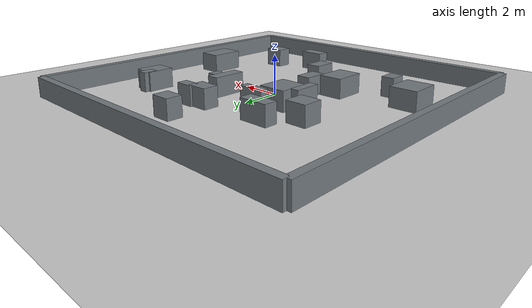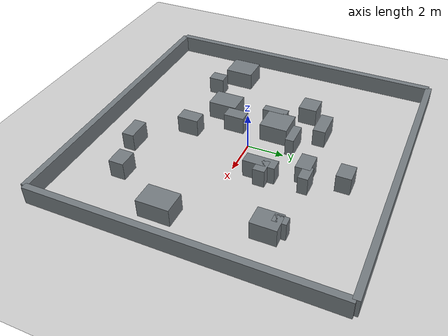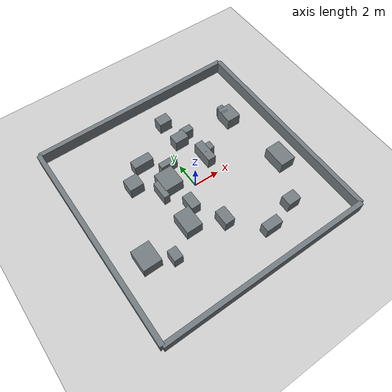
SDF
<?xml version="1.0" ?>
<sdf version="1.10">
  <world name="random_blocks_4">
    <physics name="1ms" type="ignored">
      <max_step_size>0.001</max_step_size>
      <real_time_factor>1.0</real_time_factor>
    </physics>
    <plugin filename="gz-sim-physics-system" name="gz::sim::systems::Physics"/>
    <plugin filename="gz-sim-user-commands-system" name="gz::sim::systems::UserCommands"/>
    <plugin filename="gz-sim-scene-broadcaster-system" name="gz::sim::systems::SceneBroadcaster"/>
    <light name="sun" type="directional">
      <pose>0 0 10 0 0 0</pose>
      <diffuse>0.8 0.8 0.8 1</diffuse>
      <specular>0.2 0.2 0.2 1</specular>
      <direction>-0.5 0.1 -0.9</direction>
    </light>
    <model name="ground_plane">
      <static>true</static>
      <link name="link">
        <collision name="collision"><geometry><plane><normal>0 0 1</normal><size>30 30</size></plane></geometry></collision>
        <visual name="visual"><geometry><plane><normal>0 0 1</normal><size>30 30</size></plane></geometry></visual>
      </link>
    </model>

    <model name="boundary_north">
      <static>true</static>
      <pose>0.000 8.000 0.500 0 0 0</pose>
      <link name="link">
        <collision name="collision">
          <geometry><box><size>16.000 0.350 1.000</size></box></geometry>
        </collision>
        <visual name="visual">
          <geometry><box><size>16.000 0.350 1.000</size></box></geometry>
          <material><ambient>0.45 0.48 0.50 1</ambient><diffuse>0.45 0.48 0.50 1</diffuse></material>
        </visual>
      </link>
    </model>
    <model name="boundary_south">
      <static>true</static>
      <pose>0.000 -8.000 0.500 0 0 0</pose>
      <link name="link">
        <collision name="collision">
          <geometry><box><size>16.000 0.350 1.000</size></box></geometry>
        </collision>
        <visual name="visual">
          <geometry><box><size>16.000 0.350 1.000</size></box></geometry>
          <material><ambient>0.45 0.48 0.50 1</ambient><diffuse>0.45 0.48 0.50 1</diffuse></material>
        </visual>
      </link>
    </model>
    <model name="boundary_west">
      <static>true</static>
      <pose>-8.000 0.000 0.500 0 0 0</pose>
      <link name="link">
        <collision name="collision">
          <geometry><box><size>0.350 16.000 1.000</size></box></geometry>
        </collision>
        <visual name="visual">
          <geometry><box><size>0.350 16.000 1.000</size></box></geometry>
          <material><ambient>0.45 0.48 0.50 1</ambient><diffuse>0.45 0.48 0.50 1</diffuse></material>
        </visual>
      </link>
    </model>
    <model name="boundary_east">
      <static>true</static>
      <pose>8.000 0.000 0.500 0 0 0</pose>
      <link name="link">
        <collision name="collision">
          <geometry><box><size>0.350 16.000 1.000</size></box></geometry>
        </collision>
        <visual name="visual">
          <geometry><box><size>0.350 16.000 1.000</size></box></geometry>
          <material><ambient>0.45 0.48 0.50 1</ambient><diffuse>0.45 0.48 0.50 1</diffuse></material>
        </visual>
      </link>
    </model>
    <model name="block_4_0">
      <static>true</static>
      <pose>2.231 1.689 0.500 0 0 0</pose>
      <link name="link">
        <collision name="collision">
          <geometry><box><size>0.836 0.617 1.000</size></box></geometry>
        </collision>
        <visual name="visual">
          <geometry><box><size>0.836 0.617 1.000</size></box></geometry>
          <material><ambient>0.45 0.48 0.50 1</ambient><diffuse>0.45 0.48 0.50 1</diffuse></material>
        </visual>
      </link>
    </model>
    <model name="block_4_1">
      <static>true</static>
      <pose>-1.520 1.082 0.500 0 0 0</pose>
      <link name="link">
        <collision name="collision">
          <geometry><box><size>1.410 1.521 1.000</size></box></geometry>
        </collision>
        <visual name="visual">
          <geometry><box><size>1.410 1.521 1.000</size></box></geometry>
          <material><ambient>0.45 0.48 0.50 1</ambient><diffuse>0.45 0.48 0.50 1</diffuse></material>
        </visual>
      </link>
    </model>
    <model name="block_4_2">
      <static>true</static>
      <pose>1.002 5.620 0.500 0 0 0</pose>
      <link name="link">
        <collision name="collision">
          <geometry><box><size>0.990 0.787 1.000</size></box></geometry>
        </collision>
        <visual name="visual">
          <geometry><box><size>0.990 0.787 1.000</size></box></geometry>
          <material><ambient>0.45 0.48 0.50 1</ambient><diffuse>0.45 0.48 0.50 1</diffuse></material>
        </visual>
      </link>
    </model>
    <model name="block_4_3">
      <static>true</static>
      <pose>1.924 1.516 0.500 0 0 0</pose>
      <link name="link">
        <collision name="collision">
          <geometry><box><size>0.636 1.698 1.000</size></box></geometry>
        </collision>
        <visual name="visual">
          <geometry><box><size>0.636 1.698 1.000</size></box></geometry>
          <material><ambient>0.45 0.48 0.50 1</ambient><diffuse>0.45 0.48 0.50 1</diffuse></material>
        </visual>
      </link>
    </model>
    <model name="block_4_4">
      <static>true</static>
      <pose>2.112 -5.679 0.500 0 0 0</pose>
      <link name="link">
        <collision name="collision">
          <geometry><box><size>1.280 0.671 1.000</size></box></geometry>
        </collision>
        <visual name="visual">
          <geometry><box><size>1.280 0.671 1.000</size></box></geometry>
          <material><ambient>0.45 0.48 0.50 1</ambient><diffuse>0.45 0.48 0.50 1</diffuse></material>
        </visual>
      </link>
    </model>
    <model name="block_4_5">
      <static>true</static>
      <pose>-2.237 -2.294 0.500 0 0 0</pose>
      <link name="link">
        <collision name="collision">
          <geometry><box><size>1.205 1.597 1.000</size></box></geometry>
        </collision>
        <visual name="visual">
          <geometry><box><size>1.205 1.597 1.000</size></box></geometry>
          <material><ambient>0.45 0.48 0.50 1</ambient><diffuse>0.45 0.48 0.50 1</diffuse></material>
        </visual>
      </link>
    </model>
    <model name="block_4_6">
      <static>true</static>
      <pose>5.422 3.286 0.500 0 0 0</pose>
      <link name="link">
        <collision name="collision">
          <geometry><box><size>1.066 1.340 1.000</size></box></geometry>
        </collision>
        <visual name="visual">
          <geometry><box><size>1.066 1.340 1.000</size></box></geometry>
          <material><ambient>0.45 0.48 0.50 1</ambient><diffuse>0.45 0.48 0.50 1</diffuse></material>
        </visual>
      </link>
    </model>
    <model name="block_4_7">
      <static>true</static>
      <pose>1.877 3.849 0.500 0 0 0</pose>
      <link name="link">
        <collision name="collision">
          <geometry><box><size>0.921 0.525 1.000</size></box></geometry>
        </collision>
        <visual name="visual">
          <geometry><box><size>0.921 0.525 1.000</size></box></geometry>
          <material><ambient>0.45 0.48 0.50 1</ambient><diffuse>0.45 0.48 0.50 1</diffuse></material>
        </visual>
      </link>
    </model>
    <model name="block_4_8">
      <static>true</static>
      <pose>4.406 -4.968 0.500 0 0 0</pose>
      <link name="link">
        <collision name="collision">
          <geometry><box><size>1.002 0.820 1.000</size></box></geometry>
        </collision>
        <visual name="visual">
          <geometry><box><size>1.002 0.820 1.000</size></box></geometry>
          <material><ambient>0.45 0.48 0.50 1</ambient><diffuse>0.45 0.48 0.50 1</diffuse></material>
        </visual>
      </link>
    </model>
    <model name="block_4_9">
      <static>true</static>
      <pose>-5.838 -2.854 0.500 0 0 0</pose>
      <link name="link">
        <collision name="collision">
          <geometry><box><size>1.371 1.587 1.000</size></box></geometry>
        </collision>
        <visual name="visual">
          <geometry><box><size>1.371 1.587 1.000</size></box></geometry>
          <material><ambient>0.45 0.48 0.50 1</ambient><diffuse>0.45 0.48 0.50 1</diffuse></material>
        </visual>
      </link>
    </model>
    <model name="block_4_10">
      <static>true</static>
      <pose>-3.683 2.211 0.500 0 0 0</pose>
      <link name="link">
        <collision name="collision">
          <geometry><box><size>1.059 1.003 1.000</size></box></geometry>
        </collision>
        <visual name="visual">
          <geometry><box><size>1.059 1.003 1.000</size></box></geometry>
          <material><ambient>0.45 0.48 0.50 1</ambient><diffuse>0.45 0.48 0.50 1</diffuse></material>
        </visual>
      </link>
    </model>
    <model name="block_4_11">
      <static>true</static>
      <pose>-0.810 2.246 0.500 0 0 0</pose>
      <link name="link">
        <collision name="collision">
          <geometry><box><size>1.294 0.461 1.000</size></box></geometry>
        </collision>
        <visual name="visual">
          <geometry><box><size>1.294 0.461 1.000</size></box></geometry>
          <material><ambient>0.45 0.48 0.50 1</ambient><diffuse>0.45 0.48 0.50 1</diffuse></material>
        </visual>
      </link>
    </model>
    <model name="block_4_12">
      <static>true</static>
      <pose>-1.230 -1.251 0.500 0 0 0</pose>
      <link name="link">
        <collision name="collision">
          <geometry><box><size>0.708 1.148 1.000</size></box></geometry>
        </collision>
        <visual name="visual">
          <geometry><box><size>0.708 1.148 1.000</size></box></geometry>
          <material><ambient>0.45 0.48 0.50 1</ambient><diffuse>0.45 0.48 0.50 1</diffuse></material>
        </visual>
      </link>
    </model>
    <model name="block_4_13">
      <static>true</static>
      <pose>-2.254 3.415 0.500 0 0 0</pose>
      <link name="link">
        <collision name="collision">
          <geometry><box><size>1.497 0.674 1.000</size></box></geometry>
        </collision>
        <visual name="visual">
          <geometry><box><size>1.497 0.674 1.000</size></box></geometry>
          <material><ambient>0.45 0.48 0.50 1</ambient><diffuse>0.45 0.48 0.50 1</diffuse></material>
        </visual>
      </link>
    </model>
    <model name="block_4_14">
      <static>true</static>
      <pose>1.105 3.605 0.500 0 0 0</pose>
      <link name="link">
        <collision name="collision">
          <geometry><box><size>1.096 0.787 1.000</size></box></geometry>
        </collision>
        <visual name="visual">
          <geometry><box><size>1.096 0.787 1.000</size></box></geometry>
          <material><ambient>0.45 0.48 0.50 1</ambient><diffuse>0.45 0.48 0.50 1</diffuse></material>
        </visual>
      </link>
    </model>
    <model name="block_4_15">
      <static>true</static>
      <pose>-0.066 -3.456 0.500 0 0 0</pose>
      <link name="link">
        <collision name="collision">
          <geometry><box><size>0.753 1.182 1.000</size></box></geometry>
        </collision>
        <visual name="visual">
          <geometry><box><size>0.753 1.182 1.000</size></box></geometry>
          <material><ambient>0.45 0.48 0.50 1</ambient><diffuse>0.45 0.48 0.50 1</diffuse></material>
        </visual>
      </link>
    </model>
    <model name="block_4_16">
      <static>true</static>
      <pose>5.214 3.837 0.500 0 0 0</pose>
      <link name="link">
        <collision name="collision">
          <geometry><box><size>0.468 0.720 1.000</size></box></geometry>
        </collision>
        <visual name="visual">
          <geometry><box><size>0.468 0.720 1.000</size></box></geometry>
          <material><ambient>0.45 0.48 0.50 1</ambient><diffuse>0.45 0.48 0.50 1</diffuse></material>
        </visual>
      </link>
    </model>
    <model name="block_4_17">
      <static>true</static>
      <pose>-4.272 -3.787 0.500 0 0 0</pose>
      <link name="link">
        <collision name="collision">
          <geometry><box><size>0.661 0.863 1.000</size></box></geometry>
        </collision>
        <visual name="visual">
          <geometry><box><size>0.661 0.863 1.000</size></box></geometry>
          <material><ambient>0.45 0.48 0.50 1</ambient><diffuse>0.45 0.48 0.50 1</diffuse></material>
        </visual>
      </link>
    </model>
    <model name="block_4_18">
      <static>true</static>
      <pose>-2.395 0.631 0.500 0 0 0</pose>
      <link name="link">
        <collision name="collision">
          <geometry><box><size>0.447 1.376 1.000</size></box></geometry>
        </collision>
        <visual name="visual">
          <geometry><box><size>0.447 1.376 1.000</size></box></geometry>
          <material><ambient>0.45 0.48 0.50 1</ambient><diffuse>0.45 0.48 0.50 1</diffuse></material>
        </visual>
      </link>
    </model>
    <model name="block_4_19">
      <static>true</static>
      <pose>6.169 -1.803 0.500 0 0 0</pose>
      <link name="link">
        <collision name="collision">
          <geometry><box><size>1.208 1.744 1.000</size></box></geometry>
        </collision>
        <visual name="visual">
          <geometry><box><size>1.208 1.744 1.000</size></box></geometry>
          <material><ambient>0.45 0.48 0.50 1</ambient><diffuse>0.45 0.48 0.50 1</diffuse></material>
        </visual>
      </link>
    </model>
  </world>
</sdf>
